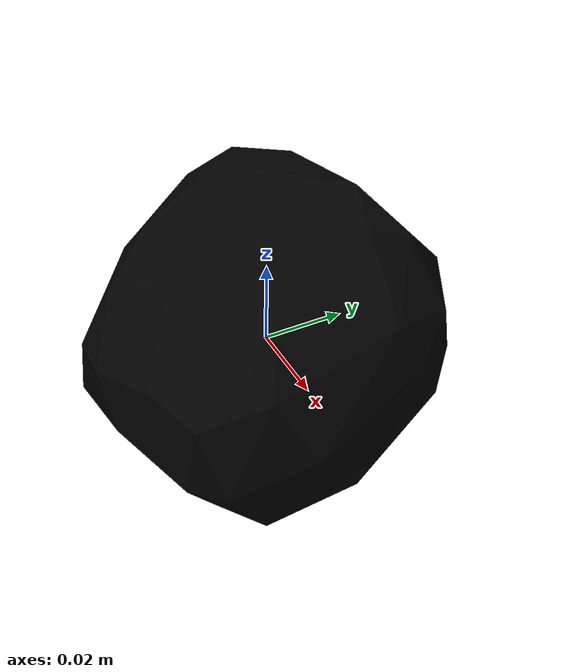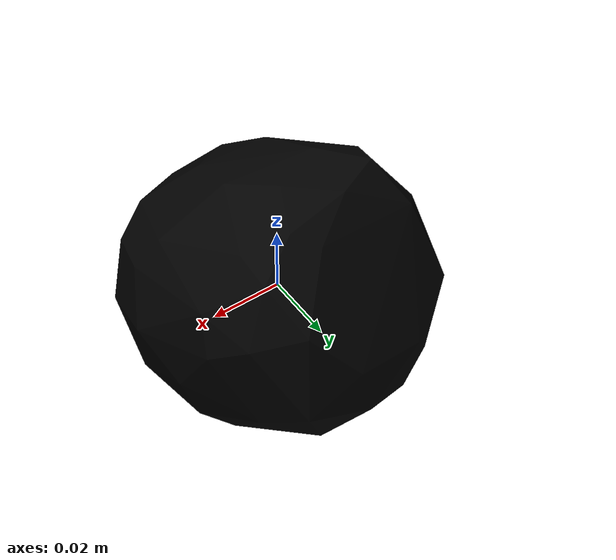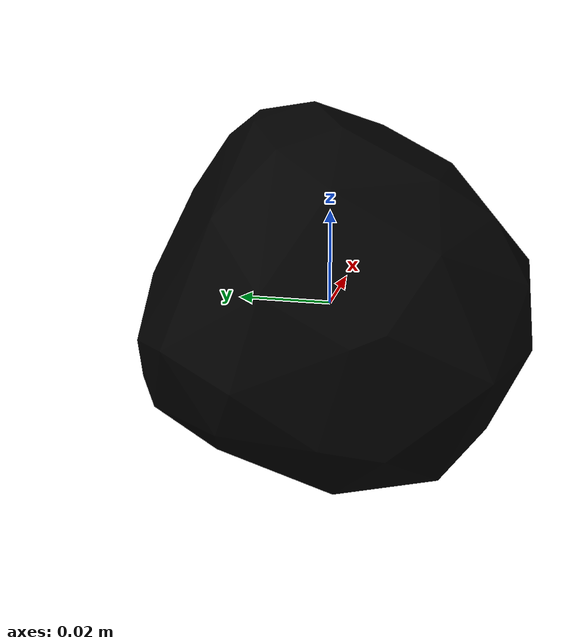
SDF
<?xml version="1.0"?>
<sdf version="1.4">
  <model name="013_apple_textured">
    <pose>0 0 0  0 0 0</pose>
    <link name="body">
      <inertial>
        <mass> 1.0 </mass>
        <pose>0 0 0 0 0 0</pose>
        <inertia>
          <ixx>0.0006106480213746828</ixx>
          <ixy>0.0</ixy>
          <ixz>0.0</ixz>
          <iyy>0.0006179053280161058</iyy>
          <iyz>0.0</iyz>
          <izz>0.0006223405883892117</izz>
        </inertia>
      </inertial>
      <visual name="visual">
        <geometry>
          <mesh>
            <uri>model://013_apple_textured/textured.dae</uri>
          </mesh>
        </geometry>
        <pose>0.0071627839209941 -0.029294511477285113 -0.020676371022131997 -1.0749295547361513 0.006269614076953068 0.2875798990056326</pose>
      </visual>
      <collision name="collision">
        <geometry>
          <mesh>
            <uri>model://013_apple_textured/textured.col.dae</uri>
          </mesh>
        </geometry>
        <max_contacts>10</max_contacts>
        <surface>
          <friction>
            <ode>
              <mu>0.8</mu>
              <mu2>0.8</mu2>
              <slip1>0</slip1>
              <slip2>0</slip2>
            </ode>
            <torsional>
              <ode/>
            </torsional>
          </friction>
          <contact>
            <ode>
              <kp>1000000.0</kp>
              <kd>1.0</kd>
              <max_vel>0.0</max_vel>
            </ode>
          </contact>
        </surface>
        <pose>0.0071627839209941 -0.029294511477285113 -0.020676371022131997 -1.0749295547361513 0.006269614076953068 0.2875798990056326</pose>
      </collision>
    </link>
  </model>
</sdf>
